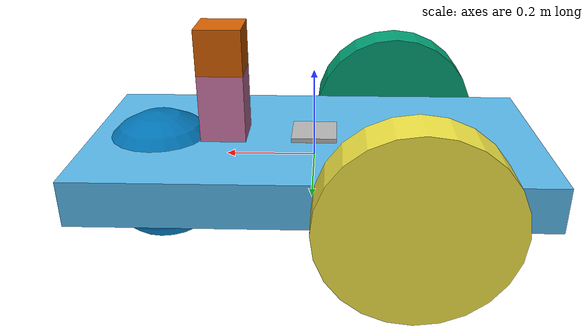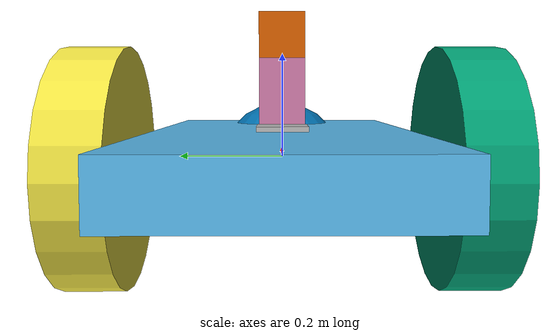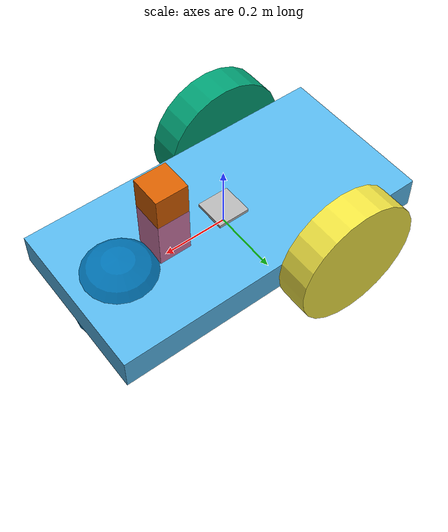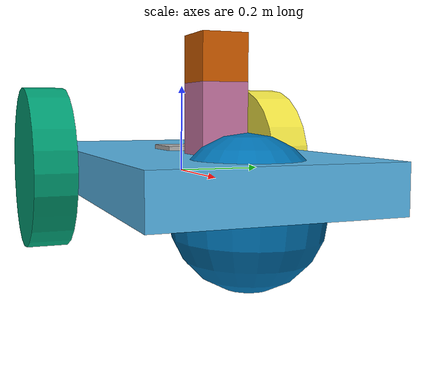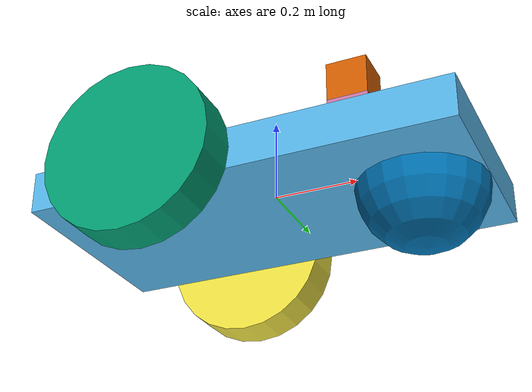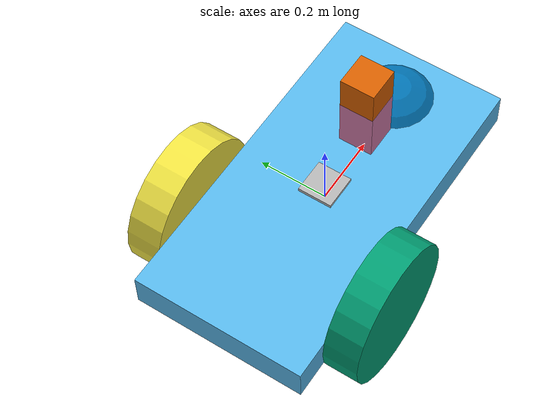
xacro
<?xml version="1.0"?>
<robot xmlns:xacro="http://www.ros.org/wiki/xacro" name="igvc_robot">

  <xacro:property name="base_link_length" value="0.5"/>
  <xacro:property name="base_link_radius" value="0.4"/>

  <!-- Dummy Link and Joint -->
  <link name="base_footprint">
  </link>

  <!-- Base Link -->
  <link name="base_link">
    <visual>
      <geometry>
        <box size="1 0.5 0.1"/>
      </geometry>
      <origin rpy="0 0 0" xyz="0 0 0"/>
    </visual>
    <collision>
      <geometry>
        <box size="1 0.5 0.1"/>
      </geometry>
      <origin rpy="0 0 0" xyz="0 0 0"/>
    </collision>
    <inertial>
      <origin rpy="0 0 0" xyz="0 0 0"/>
      <mass value="1"/>
      <inertia ixx="0.083" ixy="0" ixz="0" iyy="0.083" iyz="0" izz="0.083"/>
    </inertial>
  </link>

  <!-- Left Wheel Link -->
  <link name="right_wheel">
    <visual>
      <geometry>
        <cylinder length="0.1" radius="0.2"/>
      </geometry>
      <origin rpy="1.5708 1.5708 0" xyz="0 -0.3 0"/>
    </visual>
    <collision>
      <geometry>
        <cylinder length="0.1" radius="0.2"/>
      </geometry>
      <origin rpy="1.5708 1.5708 0" xyz="0 -0.3 0"/>
    </collision>
    <inertial>
      <origin rpy="1.5708 1.5708 0" xyz="0 -0.3 0"/>
      <mass value="0.5"/>
      <inertia ixx="0.006" ixy="0" ixz="0" iyy="0.006" iyz="0" izz="0.001"/>
    </inertial>
  </link>

  <!-- Right Wheel Link -->
  <link name="left_wheel">
    <visual>
      <geometry>
        <cylinder length="0.1" radius="0.2"/>
      </geometry>
      <origin rpy="1.5708 1.5708 0" xyz="0 0.3 0"/>
    </visual>
    <collision>
      <geometry>
        <cylinder length="0.1" radius="0.2"/>
      </geometry>
      <origin rpy="1.5708 1.5708 0" xyz="0 0.3 0"/>
    </collision>
    <inertial>
      <origin rpy="1.5708 1.5708 0" xyz="0 0.3 0"/>
      <mass value="0.5"/>
      <inertia ixx="0.006" ixy="0" ixz="0" iyy="0.006" iyz="0" izz="0.001"/>
    </inertial>
  </link>

  <link name="castor_wheel">
    <visual>
      <geometry>
        <sphere radius="0.15"/>
      </geometry>
      <origin rpy="0 0 0" xyz="0 0 0"/>
    </visual>
    <collision>
      <geometry>
        <sphere radius="0.15"/>
      </geometry>
      <origin rpy="0 0 0" xyz="0 0 0"/>
    </collision>
    <inertial>
      <mass value="0.3"/>
      <origin rpy="0 0 0" xyz="0 0 0"/>
      <inertia ixx="0.006" ixy="0" ixz="0" iyy="0.006" iyz="0" izz="0.001"/>
    </inertial>
  </link>

  <!-- Lidar Link -->
  <link name="lidar_link">
    <visual>
      <geometry>
        <box size="0.1 0.1 0.1"/>
      </geometry>
      <origin rpy="0 0 0" xyz="0 0 0"/>
    </visual>
    <collision>
      <geometry>
        <box size="0.1 0.1 0.1"/>
      </geometry>
      <origin rpy="0 0 0" xyz="0 0 0"/>
    </collision>
    <inertial>
      <mass value="0.05"/>
      <origin rpy="0 0 0" xyz="0 0 0"/>
      <inertia ixx="0.001" ixy="0" ixz="0" iyy="0.001" iyz="0" izz="0.001"/>
    </inertial>
  </link>

  <!-- Lidar Stand -->
  <link name="lidar_stand">
    <visual>
      <geometry>
        <box size="0.1 0.1 0.2"/>
      </geometry>
      <origin rpy="0 0 0" xyz="0 0 0"/>
    </visual>
    <collision>
      <geometry>
        <box size="0.1 0.1 0.2"/>
      </geometry>
      <origin rpy="0 0 0" xyz="0 0 0"/>
    </collision>
    <inertial>
      <mass value="0.05"/>
      <origin rpy="0 0 0" xyz="0 0 0"/>
      <inertia ixx="0.001" ixy="0" ixz="0" iyy="0.001" iyz="0" izz="0.001"/>
    </inertial>
  </link>
  <!-- IMU Link -->
  <link name="imu_link">
    <visual>
      <geometry>
        <box size="0.1 0.1 0.1"/>
      </geometry>
    </visual>
    <collision>
      <geometry>
        <box size="0.1 0.1 0.1"/>
      </geometry>
    </collision>

    <inertial>
      <mass value="0.01"/>
      <inertia ixx="0.001" ixy="0" ixz="0" iyy="0.001" iyz="0" izz="0.001"/>
    </inertial>
  </link>

  <!-- Joint Between Base Link and Left Wheel -->
  <joint name="left_wheel_joint" type="continuous">
    <parent link="base_link"/>
    <child link="left_wheel"/>
    <origin xyz="-0.2 0 0" rpy="0 0 0"/>
    <axis xyz="0 1 0"/>
  </joint>

  <joint name="base_footprint_joint" type="fixed">
    <parent link="base_link"/>
    <child link="base_footprint"/>
    <origin rpy="0 0 0" xyz="0 0 0"/>
  </joint>

  <!-- Joint Between Base Link and Right Wheel -->
  <joint name="right_wheel_joint" type="continuous">
    <parent link="base_link"/>
    <child link="right_wheel"/>
    <origin xyz="-0.2 0 0" rpy="0 0 0"/>
    <axis xyz="0 1 0"/>
  </joint>

  <joint name="castor_joint" type="fixed">
    <parent link="base_link"/>
    <child link="castor_wheel"/>
    <origin rpy="0 0 0" xyz="0.35 0 -0.05"/>
  </joint>

  <!-- Joint Between Base Link and Lidar Link -->
  <joint name="lidar_joint" type="fixed">
    <parent link="base_link"/>
    <child link="lidar_link"/>
    <origin xyz="0.2 0 0.25" rpy="0 0 0"/>
  </joint>
  <!-- Lidar stand joint -->

  <joint name="lidar_stand_joint" type="fixed">
    <parent link="base_link"/>
    <child link="lidar_stand"/>
    <origin xyz="0.2 0 0.1" rpy="0 0 0"/>
  </joint>

  <!-- IMU joint -->

  <joint name="imu_joint" type="fixed">
    <parent link="base_link"/>
    <child link="imu_link"/>
    <origin xyz="0 0 0.01"/>
  </joint>

  <!-- Gazebo Plugin -->

<gazebo>
  <plugin name='diff_drive' filename='libgazebo_ros_diff_drive.so'>
    <ros>
      <namespace>/</namespace>
    </ros>

    <!-- wheels -->
    <left_joint>left_wheel_joint</left_joint>
    <right_joint>right_wheel_joint</right_joint>

    <!-- kinematics -->
    <wheel_separation>0.6</wheel_separation>
    <wheel_diameter>0.4</wheel_diameter>

    <!-- limits -->
    <max_wheel_torque>20</max_wheel_torque>
    <max_wheel_acceleration>1.0</max_wheel_acceleration>

    <!-- output -->
    <publish_odom>true</publish_odom>
    <publish_odom_tf>true</publish_odom_tf>
    <publish_wheel_tf>true</publish_wheel_tf>

    <odometry_frame>odom</odometry_frame>
    <robot_base_frame>base_link</robot_base_frame>
  </plugin>
</gazebo>

  <!-- LIDAR Plugin -->
  <gazebo reference="lidar_link">
    <sensor type="ray" name="laser">
      <pose>0 0 0 0 0 0</pose>
      <visualize>false</visualize>
      <update_rate>100</update_rate>
      <ray>
        <scan>
          <horizontal>
            <samples>720</samples>
            <resolution>1</resolution>
            <min_angle>-3.14</min_angle>
            <max_angle>3.14</max_angle>
          </horizontal>
        </scan>
        <range>
          <min>0.10</min>
          <max>30.0</max>
          <resolution>0.01</resolution>
        </range>
        <noise>
          <type>gaussian</type>
          <mean>0.0</mean>
          <stddev>0.01</stddev>
        </noise>
      </ray>
      <plugin name="laser" filename="libgazebo_ros_ray_sensor.so">
      <ros>

          <remapping>~/out:=scan</remapping>
      </ros>
      <output_type>sensor_msgs/LaserScan</output_type>
      <frameName>lidar_link</frameName>
      </plugin>
    </sensor>
  </gazebo>

</robot>
